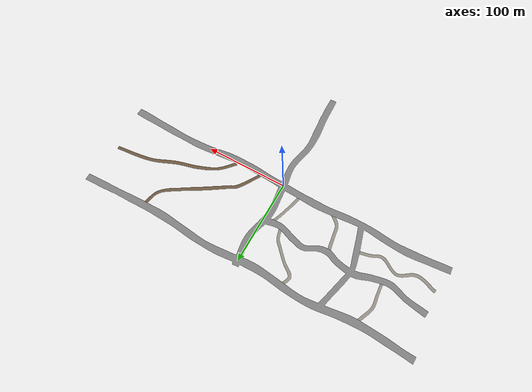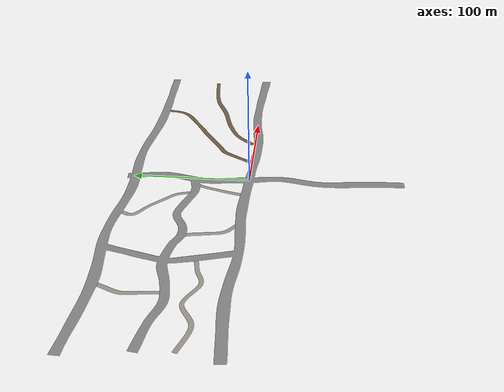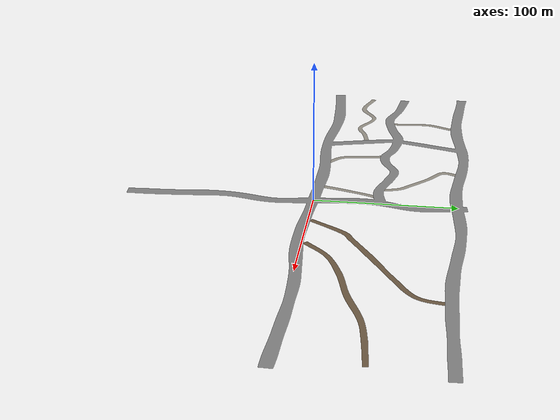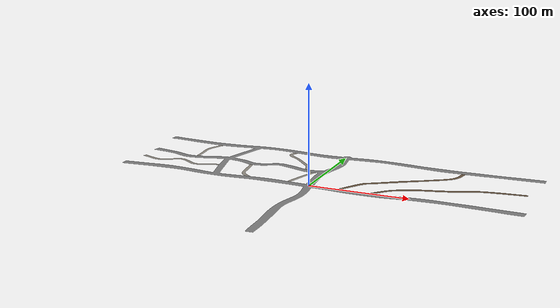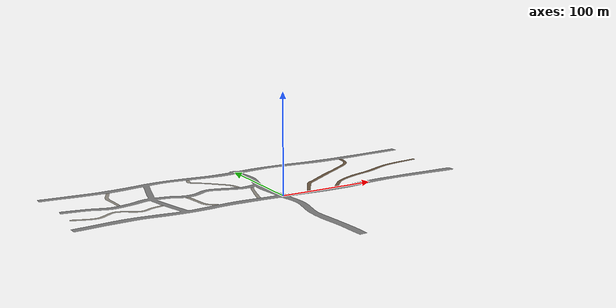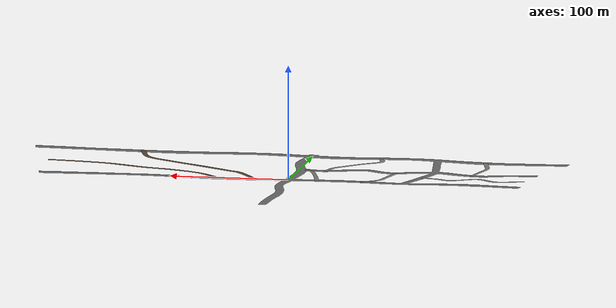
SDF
<?xml version="1.0"?>
<sdf version="1.9">
  <model name="aero_sense_roads">
    <static>true</static>
    <link name="link">
      <visual name="visual">
        <cast_shadows>false</cast_shadows>
        <geometry><mesh><uri>model://aero_sense_roads/meshes/roads.obj</uri></mesh></geometry>
        <material>
          <diffuse>0.5 0.5 0.5 1</diffuse>
          <pbr><metal>
            <albedo_map>model://darpa_subt_worlds-main/materials/textures/Asphalt01_Albedo.jpg</albedo_map>
            <normal_map>model://darpa_subt_worlds-main/materials/textures/Asphalt01_Normal.jpg</normal_map>
            <roughness_map>model://darpa_subt_worlds-main/materials/textures/Asphalt01_Roughness.jpg</roughness_map>
            <metalness>0</metalness>
          </metal></pbr>
        </material>
        <plugin filename="gz-sim-thermal-system" name="gz::sim::systems::Thermal">
          <temperature>301</temperature>
        </plugin>
      </visual>
      <!-- Concrete galis, 3-4 m wide: sun-warmed like the asphalt, a touch cooler -->
      <visual name="lanes">
        <cast_shadows>false</cast_shadows>
        <geometry><mesh><uri>model://aero_sense_roads/meshes/lanes.obj</uri></mesh></geometry>
        <material>
          <ambient>0.58 0.56 0.52 1</ambient><diffuse>0.58 0.56 0.52 1</diffuse>
          <pbr><metal><roughness>0.9</roughness><metalness>0</metalness></metal></pbr>
        </material>
        <plugin filename="gz-sim-thermal-system" name="gz::sim::systems::Thermal">
          <temperature>300</temperature>
        </plugin>
      </visual>
      <!-- Village dirt tracks, mostly under the flood -->
      <visual name="tracks">
        <cast_shadows>false</cast_shadows>
        <geometry><mesh><uri>model://aero_sense_roads/meshes/tracks.obj</uri></mesh></geometry>
        <material>
          <ambient>0.42 0.34 0.25 1</ambient><diffuse>0.42 0.34 0.25 1</diffuse>
          <pbr><metal><roughness>0.9</roughness><metalness>0</metalness></metal></pbr>
        </material>
        <plugin filename="gz-sim-thermal-system" name="gz::sim::systems::Thermal">
          <temperature>297</temperature>
        </plugin>
      </visual>
    </link>
  </model>
</sdf>
